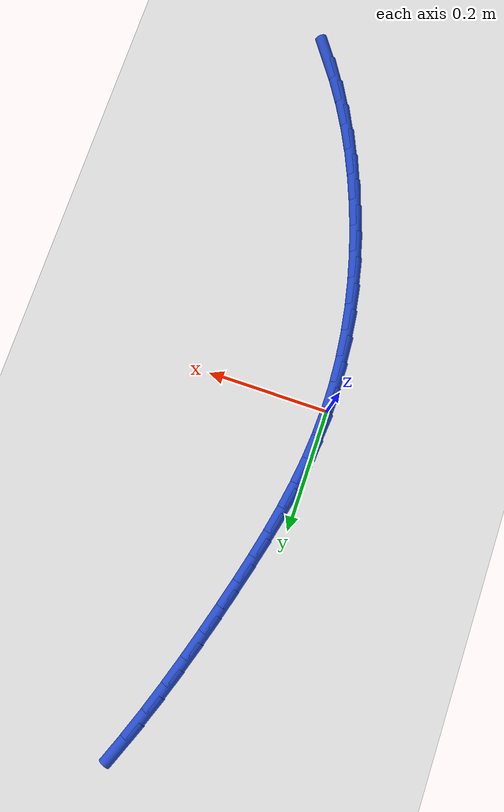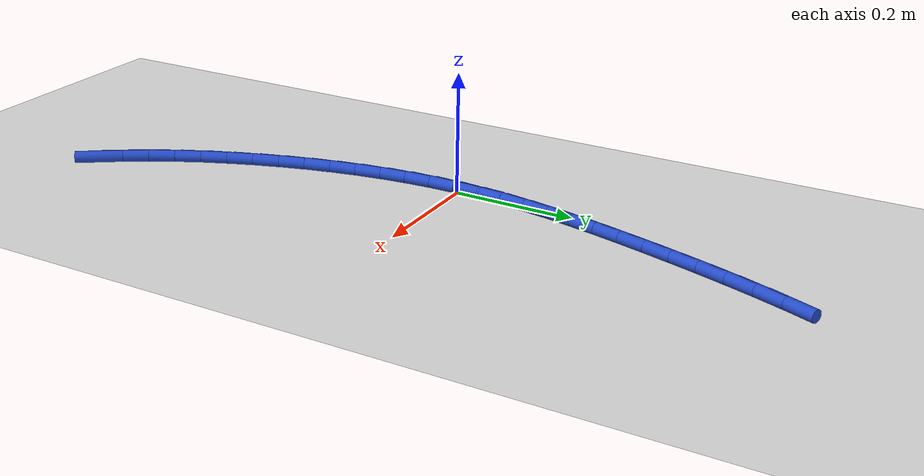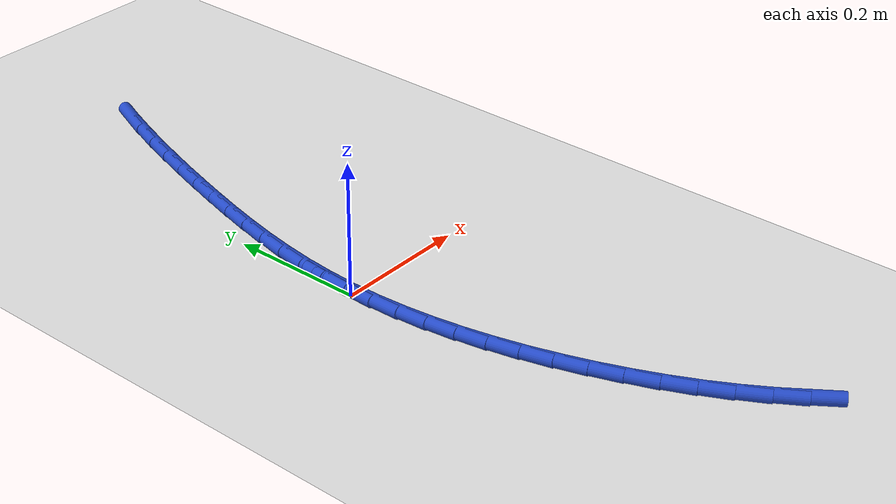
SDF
<sdf version="1.6">
 <world name="default">
  <model name="ground_plane">
   <static>1</static>
   <link name="link">
    <collision name="collision">
     <geometry><plane><normal>0 0 1</normal><size>100 100</size></plane></geometry>
     <surface><friction><ode><mu>100</mu><mu2>50</mu2></ode></friction></surface>
    </collision>
    <visual name="visual">
     <cast_shadows>0</cast_shadows>
     <geometry><plane><normal>0 0 1</normal><size>100 100</size></plane></geometry>
     <material>
      <script><uri>file://media/materials/scripts/gazebo.material</uri><name>Gazebo/WhiteGlow</name></script>
     </material>
    </visual>
   </link>
  </model>
  <model name="line">
   <link name="link_0">
    <pose>-3.469446951953614e-18 1.1796119636642288e-16 0.01 0 1.57 1.5308132806313166</pose>
    <collision name="collision">
     <geometry><cylinder><radius>0.01</radius><length>0.08</length></cylinder></geometry>
    </collision>
    <visual name="visual">
     <material>
      <script><name>Gazebo/Blue</name><uri>file://media/materials/scripts/gazebo.material</uri></script>
     </material>
     <geometry><cylinder><radius>0.01</radius><length>0.08</length></cylinder></geometry>
    </visual>
   </link>
   <link name="link_1">
    <pose>0.0017337182763946626 0.04333822652563099 0.01 0 1.57 1.4814860341088028</pose>
    <collision name="collision">
     <geometry><cylinder><radius>0.01</radius><length>0.08</length></cylinder></geometry>
    </collision>
    <visual name="visual">
     <material>
      <script><name>Gazebo/Blue</name><uri>file://media/materials/scripts/gazebo.material</uri></script>
     </material>
     <geometry><cylinder><radius>0.01</radius><length>0.08</length></cylinder></geometry>
    </visual>
   </link>
   <link name="link_2">
    <pose>0.005598666395013631 0.0864986115429684 0.01 0 1.57 1.4371777145934055</pose>
    <collision name="collision">
     <geometry><cylinder><radius>0.01</radius><length>0.08</length></cylinder></geometry>
    </collision>
    <visual name="visual">
     <material>
      <script><name>Gazebo/Blue</name><uri>file://media/materials/scripts/gazebo.material</uri></script>
     </material>
     <geometry><cylinder><radius>0.01</radius><length>0.08</length></cylinder></geometry>
    </visual>
   </link>
   <link name="link_3">
    <pose>0.011393881295287298 0.12961150245784592 0.01 0 1.57 1.3983310384944785</pose>
    <collision name="collision">
     <geometry><cylinder><radius>0.01</radius><length>0.08</length></cylinder></geometry>
    </collision>
    <visual name="visual">
     <material>
      <script><name>Gazebo/Blue</name><uri>file://media/materials/scripts/gazebo.material</uri></script>
     </material>
     <geometry><cylinder><radius>0.01</radius><length>0.08</length></cylinder></geometry>
    </visual>
   </link>
   <link name="link_4">
    <pose>0.018918399916646053 0.17280724667609726 0.01 0 1.57 1.365194974533688</pose>
    <collision name="collision">
     <geometry><cylinder><radius>0.01</radius><length>0.08</length></cylinder></geometry>
    </collision>
    <visual name="visual">
     <material>
      <script><name>Gazebo/Blue</name><uri>file://media/materials/scripts/gazebo.material</uri></script>
     </material>
     <geometry><cylinder><radius>0.01</radius><length>0.08</length></cylinder></geometry>
    </visual>
   </link>
   <link name="link_5">
    <pose>0.027971259198520275 0.21621619160355593 0.01 0 1.57 1.3378541016218768</pose>
    <collision name="collision">
     <geometry><cylinder><radius>0.01</radius><length>0.08</length></cylinder></geometry>
    </collision>
    <visual name="visual">
     <material>
      <script><name>Gazebo/Blue</name><uri>file://media/materials/scripts/gazebo.material</uri></script>
     </material>
     <geometry><cylinder><radius>0.01</radius><length>0.08</length></cylinder></geometry>
    </visual>
   </link>
   <link name="link_6">
    <pose>0.03835149608034036 0.25996868464605555 0.01 0 1.57 1.3162632808387142</pose>
    <collision name="collision">
     <geometry><cylinder><radius>0.01</radius><length>0.08</length></cylinder></geometry>
    </collision>
    <visual name="visual">
     <material>
      <script><name>Gazebo/Blue</name><uri>file://media/materials/scripts/gazebo.material</uri></script>
     </material>
     <geometry><cylinder><radius>0.01</radius><length>0.08</length></cylinder></geometry>
    </visual>
   </link>
   <link name="link_7">
    <pose>0.049858147501536706 0.30419507320942984 0.01 0 1.57 1.300276334051858</pose>
    <collision name="collision">
     <geometry><cylinder><radius>0.01</radius><length>0.08</length></cylinder></geometry>
    </collision>
    <visual name="visual">
     <material>
      <script><name>Gazebo/Blue</name><uri>file://media/materials/scripts/gazebo.material</uri></script>
     </material>
     <geometry><cylinder><radius>0.01</radius><length>0.08</length></cylinder></geometry>
    </visual>
   </link>
   <link name="link_8">
    <pose>0.06229042117734544 0.3490254555384177 0.01 0 1.57 1.2876759069109418</pose>
    <collision name="collision">
     <geometry><cylinder><radius>0.01</radius><length>0.08</length></cylinder></geometry>
    </collision>
    <visual name="visual">
     <material>
      <script><name>Gazebo/Blue</name><uri>file://media/materials/scripts/gazebo.material</uri></script>
     </material>
     <geometry><cylinder><radius>0.01</radius><length>0.08</length></cylinder></geometry>
    </visual>
   </link>
   <link name="link_9">
    <pose>0.07551718816988037 0.39448829138348357 0.01 0 1.57 1.2732175549885287</pose>
    <collision name="collision">
     <geometry><cylinder><radius>0.01</radius><length>0.08</length></cylinder></geometry>
    </collision>
    <visual name="visual">
     <material>
      <script><name>Gazebo/Blue</name><uri>file://media/materials/scripts/gazebo.material</uri></script>
     </material>
     <geometry><cylinder><radius>0.01</radius><length>0.08</length></cylinder></geometry>
    </visual>
   </link>
   <link name="link_10">
    <pose>0.08958372965432737 0.4403546589727971 0.01 0 1.57 1.2559978482683956</pose>
    <collision name="collision">
     <geometry><cylinder><radius>0.01</radius><length>0.08</length></cylinder></geometry>
    </collision>
    <visual name="visual">
     <material>
      <script><name>Gazebo/Blue</name><uri>file://media/materials/scripts/gazebo.material</uri></script>
     </material>
     <geometry><cylinder><radius>0.01</radius><length>0.08</length></cylinder></geometry>
    </visual>
   </link>
   <link name="link_11">
    <pose>0.10456282826600449 0.48635551203400523 0.01 0 1.57 1.2358466229518055</pose>
    <collision name="collision">
     <geometry><cylinder><radius>0.01</radius><length>0.08</length></cylinder></geometry>
    </collision>
    <visual name="visual">
     <material>
      <script><name>Gazebo/Blue</name><uri>file://media/materials/scripts/gazebo.material</uri></script>
     </material>
     <geometry><cylinder><radius>0.01</radius><length>0.08</length></cylinder></geometry>
    </visual>
   </link>
   <link name="link_12">
    <pose>0.12052726664022984 0.5322218042947553 0.01 0 1.57 1.2125261020440539</pose>
    <collision name="collision">
     <geometry><cylinder><radius>0.01</radius><length>0.08</length></cylinder></geometry>
    </collision>
    <visual name="visual">
     <material>
      <script><name>Gazebo/Blue</name><uri>file://media/materials/scripts/gazebo.material</uri></script>
     </material>
     <geometry><cylinder><radius>0.01</radius><length>0.08</length></cylinder></geometry>
    </visual>
   </link>
   <link name="link_13">
    <pose>0.1375498274123215 0.5776844894826944 0.01 0 1.57 1.1857280870214235</pose>
    <collision name="collision">
     <geometry><cylinder><radius>0.01</radius><length>0.08</length></cylinder></geometry>
    </collision>
    <visual name="visual">
     <material>
      <script><name>Gazebo/Blue</name><uri>file://media/materials/scripts/gazebo.material</uri></script>
     </material>
     <geometry><cylinder><radius>0.01</radius><length>0.08</length></cylinder></geometry>
    </visual>
   </link>
   <link name="link_166">
    <pose>0.18678919304781122 -0.5860852997991448 0.01 0 1.57 -0.9604920534406527</pose>
    <collision name="collision">
     <geometry><cylinder><radius>0.01</radius><length>0.08</length></cylinder></geometry>
    </collision>
    <visual name="visual">
     <material>
      <script><name>Gazebo/Blue</name><uri>file://media/materials/scripts/gazebo.material</uri></script>
     </material>
     <geometry><cylinder><radius>0.01</radius><length>0.08</length></cylinder></geometry>
    </visual>
   </link>
   <link name="link_167">
    <pose>0.1614986016047118 -0.5499234341563286 0.01 0 1.57 -1.016937878233526</pose>
    <collision name="collision">
     <geometry><cylinder><radius>0.01</radius><length>0.08</length></cylinder></geometry>
    </collision>
    <visual name="visual">
     <material>
      <script><name>Gazebo/Blue</name><uri>file://media/materials/scripts/gazebo.material</uri></script>
     </material>
     <geometry><cylinder><radius>0.01</radius><length>0.08</length></cylinder></geometry>
    </visual>
   </link>
   <link name="link_168">
    <pose>0.13810812250556517 -0.5121008747270839 0.01 0 1.57 -1.0691257795445193</pose>
    <collision name="collision">
     <geometry><cylinder><radius>0.01</radius><length>0.08</length></cylinder></geometry>
    </collision>
    <visual name="visual">
     <material>
      <script><name>Gazebo/Blue</name><uri>file://media/materials/scripts/gazebo.material</uri></script>
     </material>
     <geometry><cylinder><radius>0.01</radius><length>0.08</length></cylinder></geometry>
    </visual>
   </link>
   <link name="link_169">
    <pose>0.1165741301894079 -0.4728391988057402 0.01 0 1.57 -1.1174478912573205</pose>
    <collision name="collision">
     <geometry><cylinder><radius>0.01</radius><length>0.08</length></cylinder></geometry>
    </collision>
    <visual name="visual">
     <material>
      <script><name>Gazebo/Blue</name><uri>file://media/materials/scripts/gazebo.material</uri></script>
     </material>
     <geometry><cylinder><radius>0.01</radius><length>0.08</length></cylinder></geometry>
    </visual>
   </link>
   <link name="link_170">
    <pose>0.09685299909527646 -0.4323599836866271 0.01 0 1.57 -1.162308385288803</pose>
    <collision name="collision">
     <geometry><cylinder><radius>0.01</radius><length>0.08</length></cylinder></geometry>
    </collision>
    <visual name="visual">
     <material>
      <script><name>Gazebo/Blue</name><uri>file://media/materials/scripts/gazebo.material</uri></script>
     </material>
     <geometry><cylinder><radius>0.01</radius><length>0.08</length></cylinder></geometry>
    </visual>
   </link>
   <link name="link_171">
    <pose>0.07890110366220836 -0.3908848066640758 0.01 0 1.57 -1.20410807449912</pose>
    <collision name="collision">
     <geometry><cylinder><radius>0.01</radius><length>0.08</length></cylinder></geometry>
    </collision>
    <visual name="visual">
     <material>
      <script><name>Gazebo/Blue</name><uri>file://media/materials/scripts/gazebo.material</uri></script>
     </material>
     <geometry><cylinder><radius>0.01</radius><length>0.08</length></cylinder></geometry>
    </visual>
   </link>
   <link name="link_172">
    <pose>0.06267481832923985 -0.34863524503241544 0.01 0 1.57 -1.2435869914191517</pose>
    <collision name="collision">
     <geometry><cylinder><radius>0.01</radius><length>0.08</length></cylinder></geometry>
    </collision>
    <visual name="visual">
     <material>
      <script><name>Gazebo/Blue</name><uri>file://media/materials/scripts/gazebo.material</uri></script>
     </material>
     <geometry><cylinder><radius>0.01</radius><length>0.08</length></cylinder></geometry>
    </visual>
   </link>
   <link name="link_173">
    <pose>0.048143313948451526 -0.30582120140300445 0.01 0 1.57 -1.2833239559830556</pose>
    <collision name="collision">
     <geometry><cylinder><radius>0.01</radius><length>0.08</length></cylinder></geometry>
    </collision>
    <visual name="visual">
     <material>
      <script><name>Gazebo/Blue</name><uri>file://media/materials/scripts/gazebo.material</uri></script>
     </material>
     <geometry><cylinder><radius>0.01</radius><length>0.08</length></cylinder></geometry>
    </visual>
   </link>
   <link name="link_174">
    <pose>0.03535784489262153 -0.2625776902855083 0.01 0 1.57 -1.3244381426776026</pose>
    <collision name="collision">
     <geometry><cylinder><radius>0.01</radius><length>0.08</length></cylinder></geometry>
    </collision>
    <visual name="visual">
     <material>
      <script><name>Gazebo/Blue</name><uri>file://media/materials/scripts/gazebo.material</uri></script>
     </material>
     <geometry><cylinder><radius>0.01</radius><length>0.08</length></cylinder></geometry>
    </visual>
   </link>
   <link name="link_175">
    <pose>0.024402079848399937 -0.21901015330562054 0.01 0 1.57 -1.3671484898123323</pose>
    <collision name="collision">
     <geometry><cylinder><radius>0.01</radius><length>0.08</length></cylinder></geometry>
    </collision>
    <visual name="visual">
     <material>
      <script><name>Gazebo/Blue</name><uri>file://media/materials/scripts/gazebo.material</uri></script>
     </material>
     <geometry><cylinder><radius>0.01</radius><length>0.08</length></cylinder></geometry>
    </visual>
   </link>
   <link name="link_176">
    <pose>0.015359766964317487 -0.17522395959276013 0.01 0 1.57 -1.4116703313871686</pose>
    <collision name="collision">
     <geometry><cylinder><radius>0.01</radius><length>0.08</length></cylinder></geometry>
    </collision>
    <visual name="visual">
     <material>
      <script><name>Gazebo/Blue</name><uri>file://media/materials/scripts/gazebo.material</uri></script>
     </material>
     <geometry><cylinder><radius>0.01</radius><length>0.08</length></cylinder></geometry>
    </visual>
   </link>
   <link name="link_177">
    <pose>0.008314654388905475 -0.13132447827634863 0.01 0 1.57 -1.458214543964498</pose>
    <collision name="collision">
     <geometry><cylinder><radius>0.01</radius><length>0.08</length></cylinder></geometry>
    </collision>
    <visual name="visual">
     <material>
      <script><name>Gazebo/Blue</name><uri>file://media/materials/scripts/gazebo.material</uri></script>
     </material>
     <geometry><cylinder><radius>0.01</radius><length>0.08</length></cylinder></geometry>
    </visual>
   </link>
   <link name="link_178">
    <pose>0.0033504902706946015 -0.08741707848580485 0.01 0 1.57 -1.506982819308744</pose>
    <collision name="collision">
     <geometry><cylinder><radius>0.01</radius><length>0.08</length></cylinder></geometry>
    </collision>
    <visual name="visual">
     <material>
      <script><name>Gazebo/Blue</name><uri>file://media/materials/scripts/gazebo.material</uri></script>
     </material>
     <geometry><cylinder><radius>0.01</radius><length>0.08</length></cylinder></geometry>
    </visual>
   </link>
   <link name="link_179">
    <pose>0.0005510227582158 -0.04360712935054864 0.01 0 1.57 -1.5581609288241398</pose>
    <collision name="collision">
     <geometry><cylinder><radius>0.01</radius><length>0.08</length></cylinder></geometry>
    </collision>
    <visual name="visual">
     <material>
      <script><name>Gazebo/Blue</name><uri>file://media/materials/scripts/gazebo.material</uri></script>
     </material>
     <geometry><cylinder><radius>0.01</radius><length>0.08</length></cylinder></geometry>
    </visual>
   </link>
   <link name="link_180">
    <pose>-2.0816681711721685e-17 2.3592239273284576e-16 0.01 0 1.57 1.5296829314969573</pose>
    <collision name="collision">
     <geometry><cylinder><radius>0.01</radius><length>0.08</length></cylinder></geometry>
    </collision>
    <visual name="visual">
     <material>
      <script><name>Gazebo/Blue</name><uri>file://media/materials/scripts/gazebo.material</uri></script>
     </material>
     <geometry><cylinder><radius>0.01</radius><length>0.08</length></cylinder></geometry>
    </visual>
   </link>
   <link name="link_181">
    <pose>0.0017811701445780564 0.043298940436422045 0.01 0 1.57 1.5296829314969578</pose>
    <collision name="collision">
     <geometry><cylinder><radius>0.01</radius><length>0.08</length></cylinder></geometry>
    </collision>
    <visual name="visual">
     <material>
      <script><name>Gazebo/Blue</name><uri>file://media/materials/scripts/gazebo.material</uri></script>
     </material>
     <geometry><cylinder><radius>0.01</radius><length>0.08</length></cylinder></geometry>
    </visual>
   </link>
  </model>
 </world>
</sdf>
